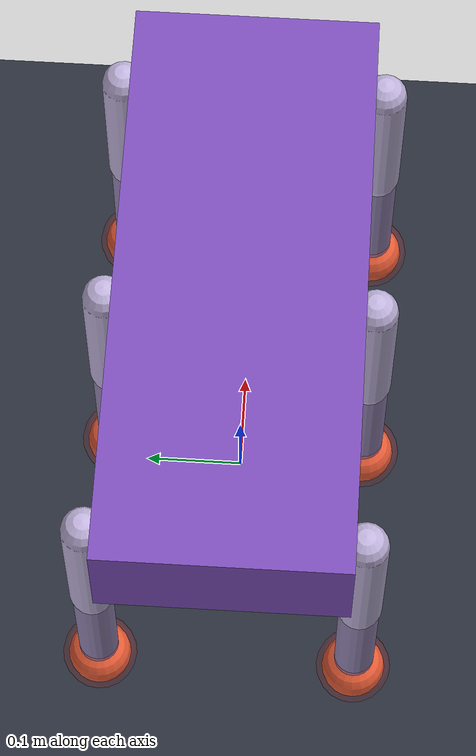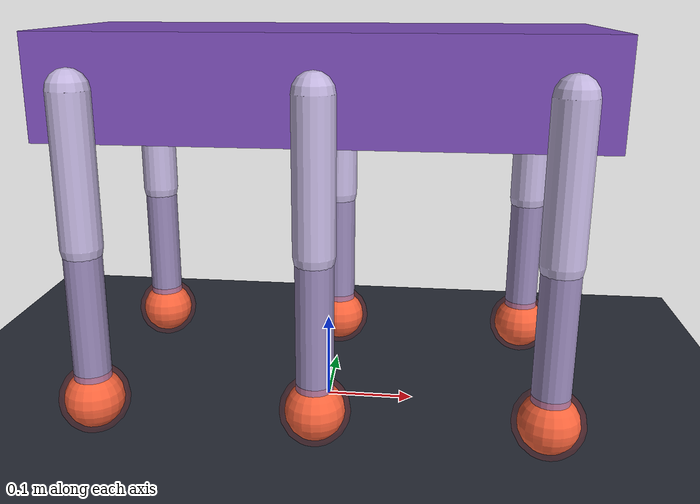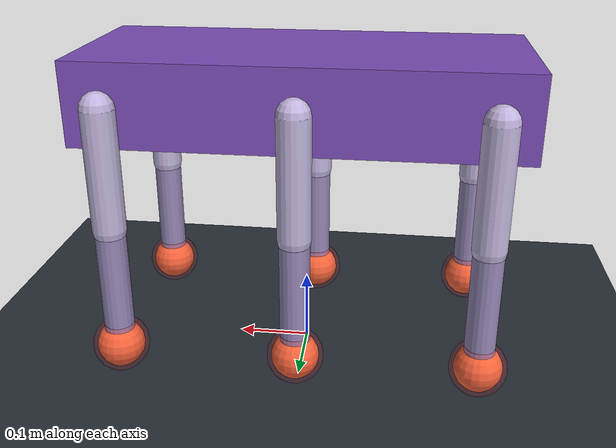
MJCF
<mujoco model="mujica-hexapod">
  <compiler angle="radian" autolimits="true"/>
  <option timestep="0.002" gravity="0 0 -9.81" integrator="RK4"/>
  <default>
    <joint damping="0.4" armature="0.018" limited="true"/>
    <geom friction="0.9 0.02 0.002" condim="3" solref="0.015 1"/>
    <motor ctrllimited="true" ctrlrange="-6 6"/>
  </default>
  <worldbody>
    <light pos="0 -1 3" dir="0 0 -1"/>
    <geom name="floor" type="plane" size="5 5 0.1" rgba="0.16 0.18 0.22 1"/>
    <body name="torso" pos="0 0 0.38">
      <freejoint name="root"/>
      <geom name="torso-geom" type="box" size="0.29 0.12 0.055" mass="4" rgba="0.48 0.30 0.72 1"/>

      <body name="leg-fl-upper" pos="0.24 0.13 0">
        <joint name="hip-fl" axis="0 1 0" range="-1.1 1.1"/>
        <geom type="capsule" fromto="0 0 0 0 0 -0.16" size="0.022" mass="0.15" rgba="0.75 0.70 0.86 1"/>
        <body name="leg-fl-lower" pos="0 0 -0.16">
          <joint name="knee-fl" axis="0 1 0" range="-1.8 0.3"/>
          <geom type="capsule" fromto="0 0 0 0 0 -0.16" size="0.020" mass="0.13" rgba="0.58 0.52 0.70 1"/>
          <geom name="foot-fl" type="sphere" pos="0 0 -0.17" size="0.032" mass="0.05" rgba="0.95 0.45 0.25 1"/>
          <site name="foot-fl-site" pos="0 0 -0.17" size="0.038" rgba="1 0.2 0.2 0.22"/>
        </body>
      </body>
      <body name="leg-fr-upper" pos="0.24 -0.13 0">
        <joint name="hip-fr" axis="0 1 0" range="-1.1 1.1"/>
        <geom type="capsule" fromto="0 0 0 0 0 -0.16" size="0.022" mass="0.15" rgba="0.75 0.70 0.86 1"/>
        <body name="leg-fr-lower" pos="0 0 -0.16">
          <joint name="knee-fr" axis="0 1 0" range="-1.8 0.3"/>
          <geom type="capsule" fromto="0 0 0 0 0 -0.16" size="0.020" mass="0.13" rgba="0.58 0.52 0.70 1"/>
          <geom name="foot-fr" type="sphere" pos="0 0 -0.17" size="0.032" mass="0.05" rgba="0.95 0.45 0.25 1"/>
          <site name="foot-fr-site" pos="0 0 -0.17" size="0.038" rgba="1 0.2 0.2 0.22"/>
        </body>
      </body>
      <body name="leg-ml-upper" pos="0 0.13 0">
        <joint name="hip-ml" axis="0 1 0" range="-1.1 1.1"/>
        <geom type="capsule" fromto="0 0 0 0 0 -0.16" size="0.022" mass="0.15" rgba="0.75 0.70 0.86 1"/>
        <body name="leg-ml-lower" pos="0 0 -0.16">
          <joint name="knee-ml" axis="0 1 0" range="-1.8 0.3"/>
          <geom type="capsule" fromto="0 0 0 0 0 -0.16" size="0.020" mass="0.13" rgba="0.58 0.52 0.70 1"/>
          <geom name="foot-ml" type="sphere" pos="0 0 -0.17" size="0.032" mass="0.05" rgba="0.95 0.45 0.25 1"/>
          <site name="foot-ml-site" pos="0 0 -0.17" size="0.038" rgba="1 0.2 0.2 0.22"/>
        </body>
      </body>
      <body name="leg-mr-upper" pos="0 -0.13 0">
        <joint name="hip-mr" axis="0 1 0" range="-1.1 1.1"/>
        <geom type="capsule" fromto="0 0 0 0 0 -0.16" size="0.022" mass="0.15" rgba="0.75 0.70 0.86 1"/>
        <body name="leg-mr-lower" pos="0 0 -0.16">
          <joint name="knee-mr" axis="0 1 0" range="-1.8 0.3"/>
          <geom type="capsule" fromto="0 0 0 0 0 -0.16" size="0.020" mass="0.13" rgba="0.58 0.52 0.70 1"/>
          <geom name="foot-mr" type="sphere" pos="0 0 -0.17" size="0.032" mass="0.05" rgba="0.95 0.45 0.25 1"/>
          <site name="foot-mr-site" pos="0 0 -0.17" size="0.038" rgba="1 0.2 0.2 0.22"/>
        </body>
      </body>
      <body name="leg-rl-upper" pos="-0.24 0.13 0">
        <joint name="hip-rl" axis="0 1 0" range="-1.1 1.1"/>
        <geom type="capsule" fromto="0 0 0 0 0 -0.16" size="0.022" mass="0.15" rgba="0.75 0.70 0.86 1"/>
        <body name="leg-rl-lower" pos="0 0 -0.16">
          <joint name="knee-rl" axis="0 1 0" range="-1.8 0.3"/>
          <geom type="capsule" fromto="0 0 0 0 0 -0.16" size="0.020" mass="0.13" rgba="0.58 0.52 0.70 1"/>
          <geom name="foot-rl" type="sphere" pos="0 0 -0.17" size="0.032" mass="0.05" rgba="0.95 0.45 0.25 1"/>
          <site name="foot-rl-site" pos="0 0 -0.17" size="0.038" rgba="1 0.2 0.2 0.22"/>
        </body>
      </body>
      <body name="leg-rr-upper" pos="-0.24 -0.13 0">
        <joint name="hip-rr" axis="0 1 0" range="-1.1 1.1"/>
        <geom type="capsule" fromto="0 0 0 0 0 -0.16" size="0.022" mass="0.15" rgba="0.75 0.70 0.86 1"/>
        <body name="leg-rr-lower" pos="0 0 -0.16">
          <joint name="knee-rr" axis="0 1 0" range="-1.8 0.3"/>
          <geom type="capsule" fromto="0 0 0 0 0 -0.16" size="0.020" mass="0.13" rgba="0.58 0.52 0.70 1"/>
          <geom name="foot-rr" type="sphere" pos="0 0 -0.17" size="0.032" mass="0.05" rgba="0.95 0.45 0.25 1"/>
          <site name="foot-rr-site" pos="0 0 -0.17" size="0.038" rgba="1 0.2 0.2 0.22"/>
        </body>
      </body>
    </body>
  </worldbody>
  <!-- MUJICA_COMPONENTS -->
  <actuator>
    <motor name="hip-fl-motor" joint="hip-fl"/><motor name="knee-fl-motor" joint="knee-fl"/>
    <motor name="hip-fr-motor" joint="hip-fr"/><motor name="knee-fr-motor" joint="knee-fr"/>
    <motor name="hip-ml-motor" joint="hip-ml"/><motor name="knee-ml-motor" joint="knee-ml"/>
    <motor name="hip-mr-motor" joint="hip-mr"/><motor name="knee-mr-motor" joint="knee-mr"/>
    <motor name="hip-rl-motor" joint="hip-rl"/><motor name="knee-rl-motor" joint="knee-rl"/>
    <motor name="hip-rr-motor" joint="hip-rr"/><motor name="knee-rr-motor" joint="knee-rr"/>
  </actuator>
  <sensor>
    <touch name="foot-force-fl" site="foot-fl-site"/><touch name="foot-force-fr" site="foot-fr-site"/>
    <touch name="foot-force-ml" site="foot-ml-site"/><touch name="foot-force-mr" site="foot-mr-site"/>
    <touch name="foot-force-rl" site="foot-rl-site"/><touch name="foot-force-rr" site="foot-rr-site"/>
  </sensor>
  <keyframe>
    <key name="home" qpos="0 0 0.38 1 0 0 0 0 -0.55 0 -0.55 0 -0.55 0 -0.55 0 -0.55 0 -0.55"/>
  </keyframe>
</mujoco>
<!-- MUJICA_END -->
